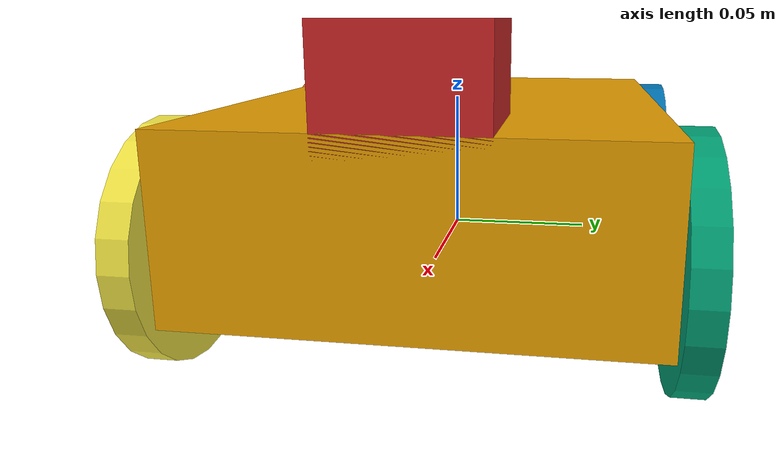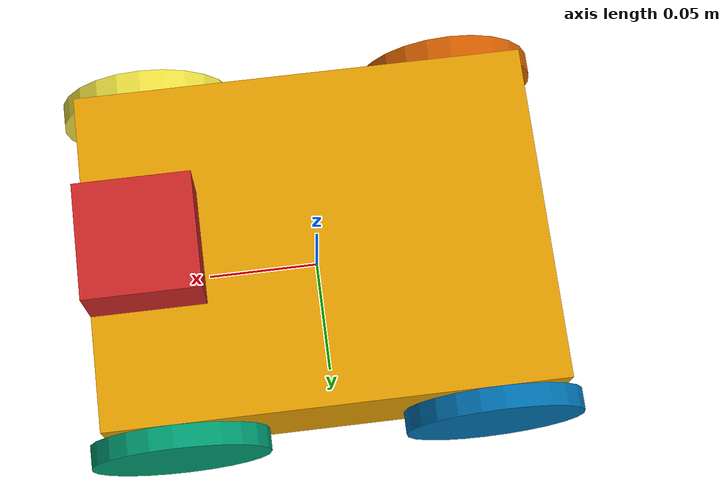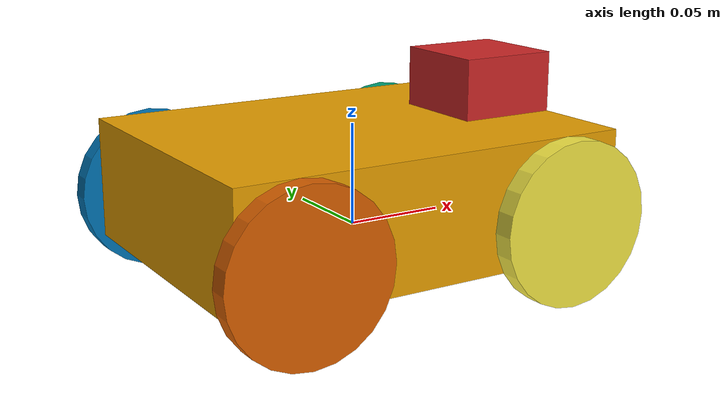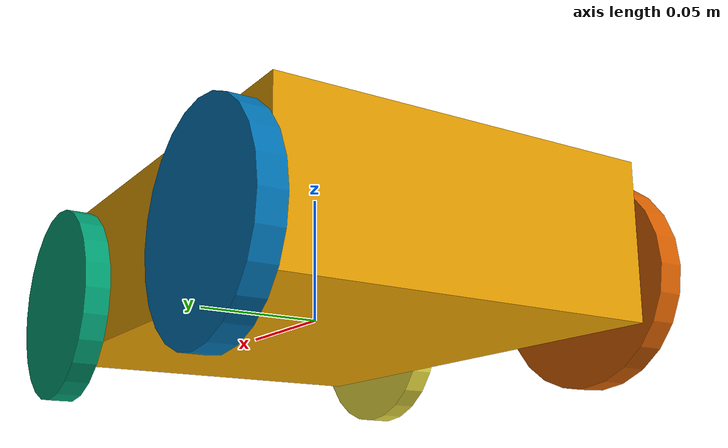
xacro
<?xml version='1.0'?>

<robot name="robot" xmlns:xacro="http://www.ros.org/wiki/xacro">

  <xacro:property name="chassis_width" value="0.15"/>
  <xacro:property name="chassis_length" value="0.2"/>
  <xacro:property name="chassis_height" value="0.06"/>
  <xacro:property name="chassis_mass" value="0.5"/>
  <xacro:property name="chassis_z_offset" value="0.02"/>

  <xacro:property name="wheel_radius" value="0.04"/>
  <xacro:property name="wheel_width" value="0.01"/>
  <xacro:property name="wheel_offset" value="0.03"/>
  <xacro:property name="wheel_mass" value="0.04"/>
   <xacro:property name="wheel_z_offset" value="${wheel_radius - 0.5 * chassis_height}"/>

  <xacro:property name="camera_link" value="0.05" /> <!-- Size of square 'camera' box -->
  <xacro:property name="camera_z_offset" value="0.0" />

  <xacro:include filename="$(find enph353_ros_lab)/urdf/macros.xacro" />

  <link name='chassis'>

    <xacro:box_inertial name="chassis" m="${chassis_mass}" x="${chassis_length}" y="${chassis_width}" z="${chassis_height}"/>

    <collision name='chassis_collision'>
      <geometry>
        <box size="${chassis_length} ${chassis_width} ${chassis_height}"/>
      </geometry>
    </collision>

    <visual name='chassis_visual'>
      <origin xyz="0 0 ${chassis_z_offset}" rpy=" 0 0 0"/>
      <geometry>
        <box size="${chassis_length} ${chassis_width} ${chassis_height}"/>
      </geometry>
    </visual>

  </link>

  <joint name="camera_joint" type="fixed">
    <axis xyz="1 0 -1" />
    <origin xyz="${chassis_length * 0.5 - camera_link * 0.5} 0 ${chassis_height * 0.5 + camera_link * 0.5}" rpy="0 0 0"/>
    <parent link="chassis"/>
    <child link="camera_link"/>
  </joint>

  <!-- Camera -->
  <link name="camera_link">
    <collision>
      <origin xyz="0 0 0" rpy="0 0 0"/>
      <geometry>
    <box size="${camera_link} ${camera_link} ${camera_link}"/>
      </geometry>
    </collision>

    <visual>
      <origin xyz="0 0 0" rpy="0 0 0"/>
      <geometry>
    <box size="${camera_link} ${camera_link} ${camera_link}"/>
      </geometry>
      <material name="red"/>
    </visual>

    <inertial>
      <mass value="1e-5" />
      <origin xyz="0 0 0" rpy="0 0 0"/>
      <inertia ixx="1e-6" ixy="0" ixz="0" iyy="1e-6" iyz="0" izz="1e-6" />
    </inertial>
  </link>

  <!-- 1: top-left, 2: top-right, 3: bottom-left, 4: bottom-right -->
  <wheel id="1" m="${wheel_mass}" r="${wheel_radius}" w="${wheel_width}"
    x="${chassis_length * 0.5 - wheel_offset}" y="${chassis_width * 0.5 + wheel_width * 0.5}" z="${wheel_z_offset}"/>
  <wheel id="2" m="${wheel_mass}" r="${wheel_radius}" w="${wheel_width}"
    x="${chassis_length * 0.5 - wheel_offset}" y="${-chassis_width * 0.5 - wheel_width * 0.5}" z="${wheel_z_offset}"/>
  <wheel id="3" m="${wheel_mass}" r="${wheel_radius}" w="${wheel_width}"
    x="${-chassis_length* 0.5 + wheel_offset}" y="${chassis_width * 0.5 + wheel_width * 0.5}" z="${wheel_z_offset}"/>
  <wheel id="4" m="${wheel_mass}" r="${wheel_radius}" w="${wheel_width}"
    x="${-chassis_length * 0.5 + wheel_offset}" y="${-chassis_width * 0.5 - wheel_width * 0.5}" z="${wheel_z_offset}"/>

  <!-- camera -->
  <gazebo reference="camera_link">
    <sensor type="camera" name="camera1">
      <update_rate>30.0</update_rate>
      <camera name="head">
        <horizontal_fov>1.3962634</horizontal_fov>
        <image>
          <width>800</width>
          <height>800</height>
          <format>R8G8B8</format>
        </image>
        <clip>
          <near>0.02</near>
          <far>300</far>
        </clip>
        <noise>
          <type>gaussian</type>
          <!-- Noise is sampled independently per pixel on each frame.
               That pixel's noise value is added to each of its color
               channels, which at that point lie in the range [0,1]. -->
          <mean>0.0</mean>
          <stddev>0.007</stddev>
        </noise>
      </camera>
      <plugin name="camera_controller" filename="libgazebo_ros_camera.so">
        <alwaysOn>true</alwaysOn>
        <updateRate>0.0</updateRate>
        <cameraName>robot/camera1</cameraName>
        <imageTopicName>image_raw</imageTopicName>
        <cameraInfoTopicName>camera_info</cameraInfoTopicName>
        <frameName>camera_link</frameName>
        <hackBaseline>0.07</hackBaseline>
        <distortionK1>0.0</distortionK1>
        <distortionK2>0.0</distortionK2>
        <distortionK3>0.0</distortionK3>
        <distortionT1>0.0</distortionT1>
        <distortionT2>0.0</distortionT2>
      </plugin>
    </sensor>
  </gazebo>

  <gazebo>
    <plugin name="differential_drive_controller" filename="libgazebo_ros_diff_drive.so">
      <alwaysOn>true</alwaysOn>
      <updateRate>30.0</updateRate>
      <leftJoint>wheel_joint_3</leftJoint>
      <rightJoint>wheel_joint_4</rightJoint>
      <wheelSeparation>${chassis_width + wheel_width}</wheelSeparation>
      <wheelDiameter>${wheel_radius * 0.5}</wheelDiameter>
      <torque>20</torque>
      <commandTopic>cmd_vel</commandTopic>
      <odometryTopic>odom</odometryTopic>
      <odometryFrame>odom</odometryFrame>
      <robotBaseFrame>base_footprint</robotBaseFrame>
    </plugin>
  </gazebo>

</robot>

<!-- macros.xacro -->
<robot xmlns:xacro="http://www.ros.org/wiki/xacro">
  <macro name="cylinder_inertial" params="name m r h">
    <inertial name="${name}_intertial">
      <mass value="${m}"/>
      <inertia  ixx="${m*(3*r*r+h*h)/12}" ixy = "0" ixz = "0"
        iyy="${m*(3*r*r+h*h)/12}" iyz = "0"
        izz="${m*r*r/2}"/>
    </inertial>
  </macro>

  <macro name="box_inertial" params="name m x y z">
    <inertial name="${name}_inertial">
      <mass value="${m}"/>
      <inertia  ixx="${m*(y*y+z*z)/12}" ixy = "0" ixz = "0"
        iyy="${m*(x*x+y*y)/12}" iyz = "0"
        izz="${m*(x*x+z*z)/12}"/>
    </inertial>
  </macro>

  <macro name="sphere_inertial" params="name m r">
    <inertial name="${name}_inertial">
      <mass value="${m}"/>
      <inertia  ixx="${2*m*r*r/5}" ixy = "0" ixz = "0"
        iyy="${2*m*r*r/5}" iyz = "0"
        izz="${2*m*r*r/5}"/>
    </inertial>
  </macro>

  <macro name="wheel" params="id m r w x y z">

    <joint name="wheel_joint_${id}" type="continuous">
      <axis xyz="0 1 0" />
      <origin xyz="${x} ${y} ${z}" rpy="0 0 0"/>
      <parent link="chassis"/>
      <child link="wheel_${id}"/>
    </joint>

    <link name='wheel_${id}'>

      <xacro:cylinder_inertial name="wheel_${id}_inertial" m="${m}" r="${r}" h="${w}"/>

      <collision name='wheel_${id}_collision'>
        <geometry>
          <cylinder radius="${r}" length="${w}"/>
        </geometry>
      </collision>

      <visual name='wheel_${id}_visual'>
        <origin xyz="0 0 0" rpy="${pi / 2} 0 0"/>
        <geometry>
          <cylinder radius="${r}" length="${w}"/>
        </geometry>
      </visual>

    </link>

  </macro>

</robot>
